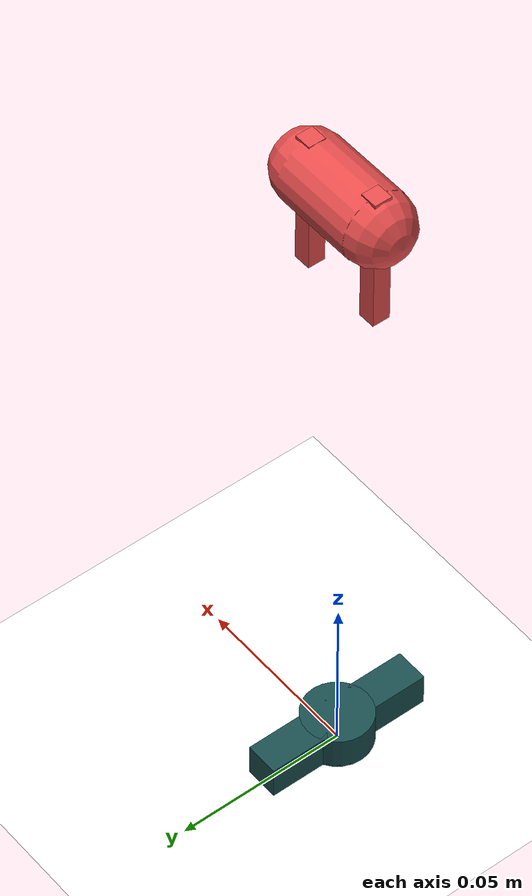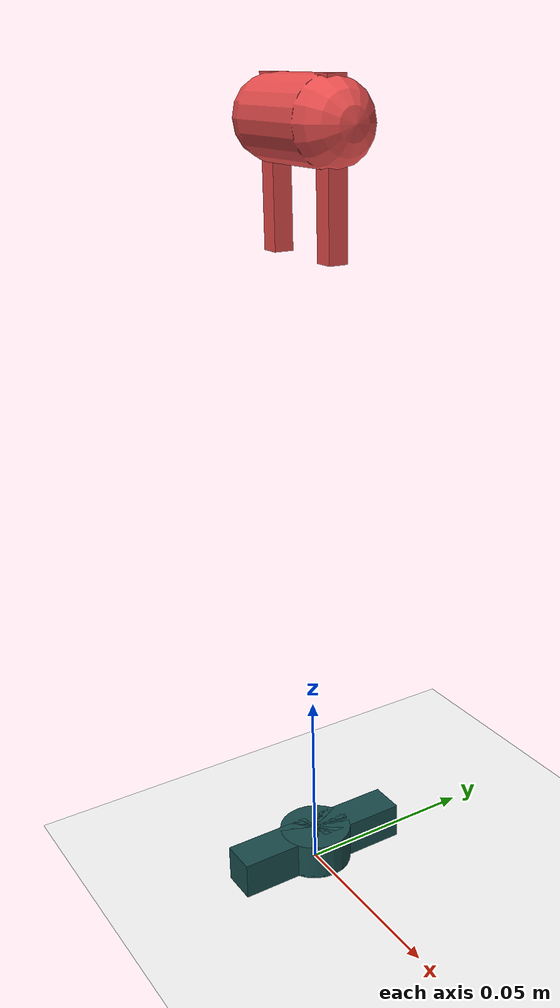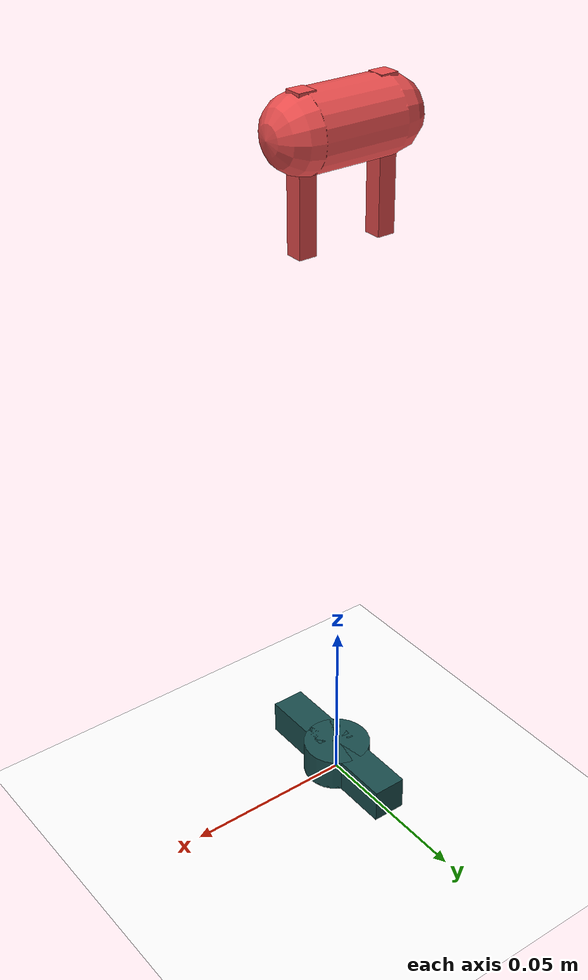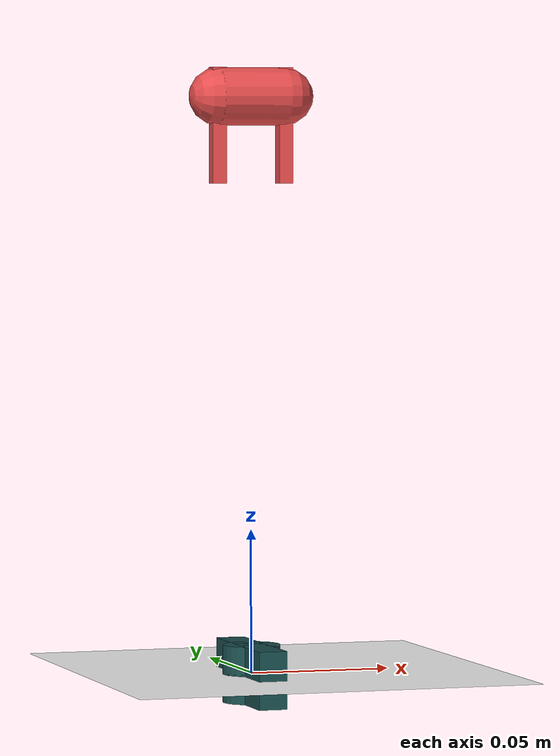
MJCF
<mujoco model="grasper">
	<compiler inertiafromgeom="true" angle="radian" coordinate="local" meshdir="meshes" texturedir="textures"/>
	<option timestep="0.01" gravity="0 0 -9.81" tolerance="1e-12" impratio="10" noslip_iterations="100" cone="elliptic"/>
	<default >
		<joint armature="1" damping="1" limited="true"/>
		<geom friction="5 0.1 0.1" condim="4" contype="1" conaffinity="1" solimp="0.999 0.999 0.01" solref="0.01 1" rgba="1 1 1 1"/>
	</default>
	<asset >
		<texture name="target0_texture" file="object_textures/pic_001.png"/>
		<material shininess="0.3" specular="1" name="target0_material" rgba="1 1 1 1" texture="target0_texture"/>
		<texture name="target1_texture" file="object_textures/pic_001.png"/>
		<material shininess="0.3" specular="1" name="target1_material" rgba="1 1 1 1" texture="target1_texture"/>
		<texture name="target2_texture" file="object_textures/pic_001.png"/>
		<material shininess="0.3" specular="1" name="target2_material" rgba="1 1 1 1" texture="target2_texture"/>
		<texture name="target3_texture" file="object_textures/pic_001.png"/>
		<material shininess="0.3" specular="1" name="target3_material" rgba="1 1 1 1" texture="target3_texture"/>
		<texture name="table_texture" file="wood_table.png" type="2d"/>
		<material shininess="0.1" specular="0.4" name="table_material" texture="table_texture" texrepeat="10 10"/>
	</asset>
	<worldbody >
		<light directional="true" castshadow="false" cutoff="100" diffuse="1 1 1" specular=".1 .1 .1" exponent="1" pos="0 0 1.3" dir="-0 0 -1.3"/>
		<geom name="table" condim="4" material="table_material" type="plane" rgba="1 1 1 1" pos="0 0 0" size="1 1 0.1" conaffinity="1" contype="1" friction="1 1 1"/>
		<body name="gripper" pos="0.0 0.0 0.2">
			<geom name="link0" condim="4" type="capsule" fromto="-0.012 0 0 0.012 0 0" rgba="0.9 0.3 0.3 1" size="0.01" conaffinity="1" contype="1" density="2000"/>
			<joint name="joint_x" type="slide" limited="false" pos="0 0 -1.5" axis="1 0 0"/>
			<joint name="joint_y" type="slide" limited="false" pos="0 0 -1.5" axis="0 1 0"/>
			<joint name="joint_z" type="slide" limited="false" pos="0 0 -1.5" axis="0 0 1"/>
			<joint name="gripper_hinge_z" type="hinge" pos="0 0 -1.5" axis="0 0 1" armature="0" damping="0.0001" stiffness="0" limited="false"/>
			<body name="fingertip1" pos="-0.012 0 -0.01">
				<joint axis="1 0 0" name="joint_tip" pos="0 0 0" limited="true" range="0 0.024" type="slide"/>
				<geom condim="4" size="0.0025 0.0025 0.02" name="ft1" rgba="0.9 0.3 0.3 1" type="box" conaffinity="1" contype="1" friction="2 0.010 0.0002" density="2000"/>
			</body>
			<body name="fingertip2" pos="0.012 0 -0.01">
				<geom condim="4" size="0.0025 0.0025 0.02" name="ft2" rgba="0.9 0.3 0.3 1" type="box" conaffinity="1" contype="1" friction="2 0.010 0.0002" density="2000"/>
			</body>
		</body>
		<body name="target0" pos="0.0 0.0 0.0">
			<geom condim="4" size="0.005 0.025 0.01" name="targetbox0" material="target0_material" rgba="0.1 0.3 0.3 1" type="box" conaffinity="1" contype="1" friction="2 0.010 0.0002" density="2000"/>
			<joint name="target0_x" type="slide" pos="0 0 0" axis="1 0 0" armature="0" damping="0" stiffness="0" limited="false"/>
			<joint name="target0_y" type="slide" pos="0 0 0" axis="0 1 0" armature="0" damping="0" stiffness="0" limited="false"/>
			<joint name="target0_z" type="slide" pos="0 0 0" axis="0 0 1" armature="0" damping="0" stiffness="0" limited="false"/>
			<joint name="target0_hinge_z" type="hinge" pos="0 0 0" axis="0 0 1" armature="0" damping="0" stiffness="0" limited="false"/>
		</body>
		<body name="target1" pos="0.0 0.0 0.0">
			<geom condim="4" size="0.01 0.01 0.005" name="targetsphere1" material="target1_material" rgba="0.1 0.3 0.3 1" type="sphere" conaffinity="1" contype="1" friction="2 0.010 0.0002" density="2000"/>
			<joint name="target1_x" type="slide" pos="0 0 0" axis="1 0 0" armature="0" damping="0" stiffness="0" limited="false"/>
			<joint name="target1_y" type="slide" pos="0 0 0" axis="0 1 0" armature="0" damping="0" stiffness="0" limited="false"/>
			<joint name="target1_z" type="slide" pos="0 0 0" axis="0 0 1" armature="0" damping="0" stiffness="0" limited="false"/>
			<joint name="target1_hinge_z" type="hinge" pos="0 0 0" axis="0 0 1" armature="0" damping="0" stiffness="0" limited="false"/>
		</body>
		<body name="target2" pos="0.0 0.0 0.0">
			<geom condim="4" size="0.01 0.01 0.005" name="targetcylinder2" material="target2_material" rgba="0.1 0.3 0.3 1" type="cylinder" conaffinity="1" contype="1" friction="2 0.010 0.0002" density="2000"/>
			<joint name="target2_x" type="slide" pos="0 0 0" axis="1 0 0" armature="0" damping="0" stiffness="0" limited="false"/>
			<joint name="target2_y" type="slide" pos="0 0 0" axis="0 1 0" armature="0" damping="0" stiffness="0" limited="false"/>
			<joint name="target2_z" type="slide" pos="0 0 0" axis="0 0 1" armature="0" damping="0" stiffness="0" limited="false"/>
			<joint name="target2_hinge_z" type="hinge" pos="0 0 0" axis="0 0 1" armature="0" damping="0" stiffness="0" limited="false"/>
		</body>
		<body name="target3" pos="0.0 0.0 0.0">
			<geom condim="4" size="0.005 0.02 0.01" name="targetellipsoid3" material="target3_material" rgba="0.1 0.3 0.3 1" type="ellipsoid" conaffinity="1" contype="1" friction="2 0.010 0.0002" density="2000"/>
			<joint name="target3_x" type="slide" pos="0 0 0" axis="1 0 0" armature="0" damping="0" stiffness="0" limited="false"/>
			<joint name="target3_y" type="slide" pos="0 0 0" axis="0 1 0" armature="0" damping="0" stiffness="0" limited="false"/>
			<joint name="target3_z" type="slide" pos="0 0 0" axis="0 0 1" armature="0" damping="0" stiffness="0" limited="false"/>
			<joint name="target3_hinge_z" type="hinge" pos="0 0 0" axis="0 0 1" armature="0" damping="0" stiffness="0" limited="false"/>
		</body>
	</worldbody>
	<actuator >
		<position joint="joint_x" ctrllimited="false" kp="2"/>
		<position joint="joint_y" ctrllimited="false" kp="2"/>
		<position joint="joint_z" ctrllimited="false" kp="16"/>
		<velocity joint="joint_z" ctrllimited="false" kv="8"/>
		<motor joint="joint_tip" ctrlrange="-5.0 5.0" ctrllimited="true"/>
	</actuator>
</mujoco>
